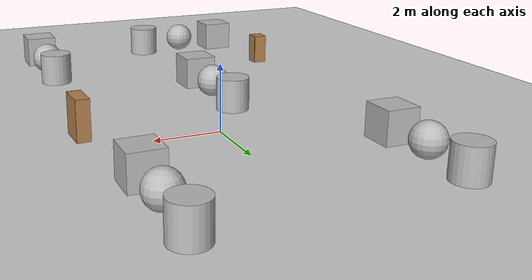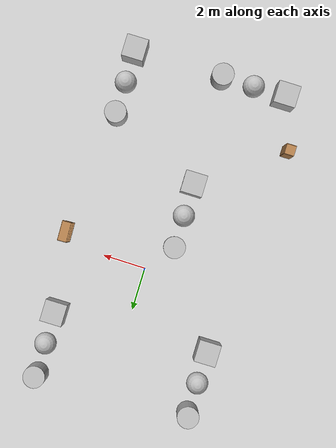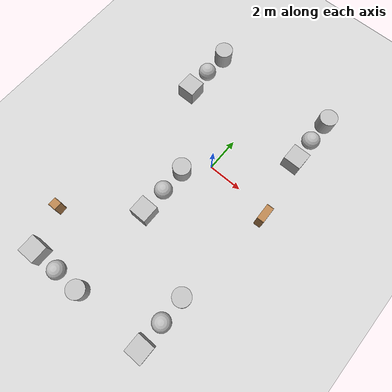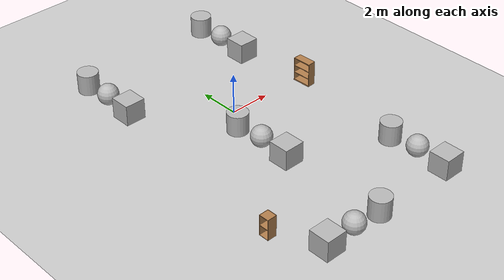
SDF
<sdf version="1.6">
 <world name="default">
  <light name="sun" type="directional">
   <pose>0 0 10 0 -0 0</pose>
   <diffuse>0.8 0.8 0.8 1</diffuse>
   <specular>0.1 0.1 0.1 1</specular>
   <attenuation>
    <range>1000</range>
    <constant>0.9</constant>
    <linear>0.01</linear>
    <quadratic>0.001</quadratic>
   </attenuation>
   <direction>-0.5 0.5 -1</direction>
  </light>
  <model name="ground_plane">
   <static>1</static>
   <link name="link">
    <collision name="collision">
     <geometry><plane><normal>0 0 1</normal><size>100 100</size></plane></geometry>
     <surface><friction><ode><mu>100</mu><mu2>50</mu2></ode></friction></surface>
    </collision>
    <visual name="visual">
     <cast_shadows>0</cast_shadows>
     <geometry><plane><normal>0 0 1</normal><size>100 100</size></plane></geometry>
     <material>
      <script><uri>file://media/materials/scripts/gazebo.material</uri><name>Gazebo/Grey</name></script>
     </material>
    </visual>
   </link>
  </model>
  <gravity>0 0 -9.8</gravity>
  <magnetic_field>6e-06 2.3e-05 -4.2e-05</magnetic_field>
  <atmosphere type="adiabatic"/>
  <physics name="default_physics" default="0" type="ode">
   <max_step_size>0.001</max_step_size>
   <real_time_factor>1</real_time_factor>
   <real_time_update_rate>1000</real_time_update_rate>
  </physics>
  <scene><ambient>0.4 0.4 0.4 1</ambient><background>0.7 0.7 0.7 1</background><shadows>1</shadows></scene>
  <spherical_coordinates>
   <surface_model>EARTH_WGS84</surface_model>
   <latitude_deg>0</latitude_deg>
   <longitude_deg>0</longitude_deg>
   <elevation>0</elevation>
   <heading_deg>0</heading_deg>
  </spherical_coordinates>
  <model name="textured_shapes">
   <pose>3.31091 -7.87686 0.682904 0 -0 0</pose>
   <link name="box">
    <pose>0 -1.5 0 0 -0 0</pose>
    <collision name="collision"><geometry><box><size>1 1 1</size></box></geometry></collision>
    <visual name="visual">
     <geometry><box><size>1 1 1</size></box></geometry>
     <material>
      <script>
       <uri>model://textured_shapes/materials/scripts</uri>
       <uri>model://textured_shapes/materials/textures</uri>
       <name>TexturedShape/Squares</name>
      </script>
     </material>
    </visual>
    <inertial>
     <inertia><ixx>1</ixx><ixy>0</ixy><ixz>0</ixz><iyy>1</iyy><iyz>0</iyz><izz>1</izz></inertia>
     <mass>1</mass>
    </inertial>
   </link>
   <link name="sphere">
    <collision name="collision"><geometry><sphere><radius>0.5</radius></sphere></geometry></collision>
    <visual name="visual">
     <geometry><sphere><radius>0.5</radius></sphere></geometry>
     <material>
      <script>
       <uri>model://textured_shapes/materials/scripts</uri>
       <uri>model://textured_shapes/materials/textures</uri>
       <name>TexturedShape/Squares</name>
      </script>
     </material>
    </visual>
    <inertial>
     <inertia><ixx>1</ixx><ixy>0</ixy><ixz>0</ixz><iyy>1</iyy><iyz>0</iyz><izz>1</izz></inertia>
     <mass>1</mass>
    </inertial>
   </link>
   <link name="cylinder">
    <pose>0 1.5 0 0 -0 0</pose>
    <collision name="collision">
     <geometry><cylinder><radius>0.5</radius><length>1</length></cylinder></geometry>
    </collision>
    <visual name="visual">
     <geometry><cylinder><radius>0.5</radius><length>1</length></cylinder></geometry>
     <material>
      <script>
       <uri>model://textured_shapes/materials/scripts</uri>
       <uri>model://textured_shapes/materials/textures</uri>
       <name>TexturedShape/Squares</name>
      </script>
     </material>
    </visual>
    <inertial>
     <inertia><ixx>1</ixx><ixy>0</ixy><ixz>0</ixz><iyy>1</iyy><iyz>0</iyz><izz>1</izz></inertia>
     <mass>1</mass>
    </inertial>
   </link>
  </model>
  <model name="textured_shapes_clone">
   <pose>-0.994482 -2.83427 0.682904 0 -0 0</pose>
   <link name="box">
    <pose>0 -1.5 0 0 -0 0</pose>
    <collision name="collision"><geometry><box><size>1 1 1</size></box></geometry></collision>
    <visual name="visual">
     <geometry><box><size>1 1 1</size></box></geometry>
     <material>
      <script>
       <uri>model://textured_shapes/materials/scripts</uri>
       <uri>model://textured_shapes/materials/textures</uri>
       <name>TexturedShape/Squares</name>
      </script>
     </material>
    </visual>
    <inertial>
     <inertia><ixx>1</ixx><ixy>0</ixy><ixz>0</ixz><iyy>1</iyy><iyz>0</iyz><izz>1</izz></inertia>
     <mass>1</mass>
    </inertial>
   </link>
   <link name="sphere">
    <collision name="collision"><geometry><sphere><radius>0.5</radius></sphere></geometry></collision>
    <visual name="visual">
     <geometry><sphere><radius>0.5</radius></sphere></geometry>
     <material>
      <script>
       <uri>model://textured_shapes/materials/scripts</uri>
       <uri>model://textured_shapes/materials/textures</uri>
       <name>TexturedShape/Squares</name>
      </script>
     </material>
    </visual>
    <inertial>
     <inertia><ixx>1</ixx><ixy>0</ixy><ixz>0</ixz><iyy>1</iyy><iyz>0</iyz><izz>1</izz></inertia>
     <mass>1</mass>
    </inertial>
   </link>
   <link name="cylinder">
    <pose>0 1.5 0 0 -0 0</pose>
    <collision name="collision">
     <geometry><cylinder><radius>0.5</radius><length>1</length></cylinder></geometry>
    </collision>
    <visual name="visual">
     <geometry><cylinder><radius>0.5</radius><length>1</length></cylinder></geometry>
     <material>
      <script>
       <uri>model://textured_shapes/materials/scripts</uri>
       <uri>model://textured_shapes/materials/textures</uri>
       <name>TexturedShape/Squares</name>
      </script>
     </material>
    </visual>
    <inertial>
     <inertia><ixx>1</ixx><ixy>0</ixy><ixz>0</ixz><iyy>1</iyy><iyz>0</iyz><izz>1</izz></inertia>
     <mass>1</mass>
    </inertial>
   </link>
  </model>
  <model name="textured_shapes_clone_0">
   <pose>3.32625 4.54214 0.682904 0 -0 0</pose>
   <link name="box">
    <pose>0 -1.5 0 0 -0 0</pose>
    <collision name="collision"><geometry><box><size>1 1 1</size></box></geometry></collision>
    <visual name="visual">
     <geometry><box><size>1 1 1</size></box></geometry>
     <material>
      <script>
       <uri>model://textured_shapes/materials/scripts</uri>
       <uri>model://textured_shapes/materials/textures</uri>
       <name>TexturedShape/Squares</name>
      </script>
     </material>
    </visual>
    <inertial>
     <inertia><ixx>1</ixx><ixy>0</ixy><ixz>0</ixz><iyy>1</iyy><iyz>0</iyz><izz>1</izz></inertia>
     <mass>1</mass>
    </inertial>
   </link>
   <link name="sphere">
    <collision name="collision"><geometry><sphere><radius>0.5</radius></sphere></geometry></collision>
    <visual name="visual">
     <geometry><sphere><radius>0.5</radius></sphere></geometry>
     <material>
      <script>
       <uri>model://textured_shapes/materials/scripts</uri>
       <uri>model://textured_shapes/materials/textures</uri>
       <name>TexturedShape/Squares</name>
      </script>
     </material>
    </visual>
    <inertial>
     <inertia><ixx>1</ixx><ixy>0</ixy><ixz>0</ixz><iyy>1</iyy><iyz>0</iyz><izz>1</izz></inertia>
     <mass>1</mass>
    </inertial>
   </link>
   <link name="cylinder">
    <pose>0 1.5 0 0 -0 0</pose>
    <collision name="collision">
     <geometry><cylinder><radius>0.5</radius><length>1</length></cylinder></geometry>
    </collision>
    <visual name="visual">
     <geometry><cylinder><radius>0.5</radius><length>1</length></cylinder></geometry>
     <material>
      <script>
       <uri>model://textured_shapes/materials/scripts</uri>
       <uri>model://textured_shapes/materials/textures</uri>
       <name>TexturedShape/Squares</name>
      </script>
     </material>
    </visual>
    <inertial>
     <inertia><ixx>1</ixx><ixy>0</ixy><ixz>0</ixz><iyy>1</iyy><iyz>0</iyz><izz>1</izz></inertia>
     <mass>1</mass>
    </inertial>
   </link>
  </model>
  <model name="textured_shapes_clone_1">
   <pose>-2.31122 -9.38407 0.682904 0 0 -1.5755</pose>
   <link name="box">
    <pose>0 -1.5 0 0 -0 0</pose>
    <collision name="collision"><geometry><box><size>1 1 1</size></box></geometry></collision>
    <visual name="visual">
     <geometry><box><size>1 1 1</size></box></geometry>
     <material>
      <script>
       <uri>model://textured_shapes/materials/scripts</uri>
       <uri>model://textured_shapes/materials/textures</uri>
       <name>TexturedShape/Squares</name>
      </script>
     </material>
    </visual>
    <inertial>
     <inertia><ixx>1</ixx><ixy>0</ixy><ixz>0</ixz><iyy>1</iyy><iyz>0</iyz><izz>1</izz></inertia>
     <mass>1</mass>
    </inertial>
   </link>
   <link name="sphere">
    <collision name="collision"><geometry><sphere><radius>0.5</radius></sphere></geometry></collision>
    <visual name="visual">
     <geometry><sphere><radius>0.5</radius></sphere></geometry>
     <material>
      <script>
       <uri>model://textured_shapes/materials/scripts</uri>
       <uri>model://textured_shapes/materials/textures</uri>
       <name>TexturedShape/Squares</name>
      </script>
     </material>
    </visual>
    <inertial>
     <inertia><ixx>1</ixx><ixy>0</ixy><ixz>0</ixz><iyy>1</iyy><iyz>0</iyz><izz>1</izz></inertia>
     <mass>1</mass>
    </inertial>
   </link>
   <link name="cylinder">
    <pose>0 1.5 0 0 -0 0</pose>
    <collision name="collision">
     <geometry><cylinder><radius>0.5</radius><length>1</length></cylinder></geometry>
    </collision>
    <visual name="visual">
     <geometry><cylinder><radius>0.5</radius><length>1</length></cylinder></geometry>
     <material>
      <script>
       <uri>model://textured_shapes/materials/scripts</uri>
       <uri>model://textured_shapes/materials/textures</uri>
       <name>TexturedShape/Squares</name>
      </script>
     </material>
    </visual>
    <inertial>
     <inertia><ixx>1</ixx><ixy>0</ixy><ixz>0</ixz><iyy>1</iyy><iyz>0</iyz><izz>1</izz></inertia>
     <mass>1</mass>
    </inertial>
   </link>
  </model>
  <model name="textured_shapes_clone_2">
   <pose>-3.79736 4.25921 0.682904 0 -0 0</pose>
   <link name="box">
    <pose>0 -1.5 0 0 -0 0</pose>
    <collision name="collision"><geometry><box><size>1 1 1</size></box></geometry></collision>
    <visual name="visual">
     <geometry><box><size>1 1 1</size></box></geometry>
     <material>
      <script>
       <uri>model://textured_shapes/materials/scripts</uri>
       <uri>model://textured_shapes/materials/textures</uri>
       <name>TexturedShape/Squares</name>
      </script>
     </material>
    </visual>
    <inertial>
     <inertia><ixx>1</ixx><ixy>0</ixy><ixz>0</ixz><iyy>1</iyy><iyz>0</iyz><izz>1</izz></inertia>
     <mass>1</mass>
    </inertial>
   </link>
   <link name="sphere">
    <collision name="collision"><geometry><sphere><radius>0.5</radius></sphere></geometry></collision>
    <visual name="visual">
     <geometry><sphere><radius>0.5</radius></sphere></geometry>
     <material>
      <script>
       <uri>model://textured_shapes/materials/scripts</uri>
       <uri>model://textured_shapes/materials/textures</uri>
       <name>TexturedShape/Squares</name>
      </script>
     </material>
    </visual>
    <inertial>
     <inertia><ixx>1</ixx><ixy>0</ixy><ixz>0</ixz><iyy>1</iyy><iyz>0</iyz><izz>1</izz></inertia>
     <mass>1</mass>
    </inertial>
   </link>
   <link name="cylinder">
    <pose>0 1.5 0 0 -0 0</pose>
    <collision name="collision">
     <geometry><cylinder><radius>0.5</radius><length>1</length></cylinder></geometry>
    </collision>
    <visual name="visual">
     <geometry><cylinder><radius>0.5</radius><length>1</length></cylinder></geometry>
     <material>
      <script>
       <uri>model://textured_shapes/materials/scripts</uri>
       <uri>model://textured_shapes/materials/textures</uri>
       <name>TexturedShape/Squares</name>
      </script>
     </material>
    </visual>
    <inertial>
     <inertia><ixx>1</ixx><ixy>0</ixy><ixz>0</ixz><iyy>1</iyy><iyz>0</iyz><izz>1</izz></inertia>
     <mass>1</mass>
    </inertial>
   </link>
  </model>
  <model name="cabinet">
   <static>1</static>
   <link name="cabinet_bottom_plate">
    <inertial>
     <pose>0 0 -1 0 -0 0</pose>
     <inertia><ixx>2.05</ixx><ixy>0</ixy><ixz>0</ixz><iyy>2.05</iyy><iyz>0</iyz><izz>2.05</izz></inertia>
     <mass>25</mass>
    </inertial>
    <collision name="cabinet_bottom_plate_geom">
     <pose>0 0 0.01 0 -0 0</pose>
     <geometry><box><size>0.45 0.45 0.02</size></box></geometry>
    </collision>
    <visual name="cabinet_bottom_plate_geom_visual">
     <pose>0 0 0.01 0 -0 0</pose>
     <geometry><box><size>0.45 0.45 0.02</size></box></geometry>
     <material>
      <script><uri>file://media/materials/scripts/gazebo.material</uri><name>Gazebo/Wood</name></script>
     </material>
    </visual>
    <collision name="cabinet_bottom_plate_geom_cabinet_back_plate">
     <pose>0.235 0 0.51 0 -0 0</pose>
     <geometry><box><size>0.02 0.45 1.02</size></box></geometry>
    </collision>
    <visual name="cabinet_bottom_plate_geom_cabinet_back_plate_visual">
     <pose>0.235 0 0.51 0 -0 0</pose>
     <geometry><box><size>0.02 0.45 1.02</size></box></geometry>
     <material>
      <script><uri>file://media/materials/scripts/gazebo.material</uri><name>Gazebo/Wood</name></script>
     </material>
    </visual>
    <collision name="cabinet_bottom_plate_geom_cabinet_left_plate">
     <pose>0 0.235 0.51 0 -0 0</pose>
     <geometry><box><size>0.45 0.02 1.02</size></box></geometry>
    </collision>
    <visual name="cabinet_bottom_plate_geom_cabinet_left_plate_visual">
     <pose>0 0.235 0.51 0 -0 0</pose>
     <geometry><box><size>0.45 0.02 1.02</size></box></geometry>
     <material>
      <script><uri>file://media/materials/scripts/gazebo.material</uri><name>Gazebo/Wood</name></script>
     </material>
    </visual>
    <collision name="cabinet_bottom_plate_geom_cabinet_middle_plate">
     <pose>0 0 0.51 0 -0 0</pose>
     <geometry><box><size>0.45 0.45 0.02</size></box></geometry>
    </collision>
    <visual name="cabinet_bottom_plate_geom_cabinet_middle_plate_visual">
     <pose>0 0 0.51 0 -0 0</pose>
     <geometry><box><size>0.45 0.45 0.02</size></box></geometry>
     <material>
      <script><uri>file://media/materials/scripts/gazebo.material</uri><name>Gazebo/Wood</name></script>
     </material>
    </visual>
    <collision name="cabinet_bottom_plate_geom_cabinet_right_plate">
     <pose>0 -0.235 0.51 0 -0 0</pose>
     <geometry><box><size>0.45 0.02 1.02</size></box></geometry>
    </collision>
    <visual name="cabinet_bottom_plate_geom_cabinet_right_plate_visual">
     <pose>0 -0.235 0.51 0 -0 0</pose>
     <geometry><box><size>0.45 0.02 1.02</size></box></geometry>
     <material>
      <script><uri>file://media/materials/scripts/gazebo.material</uri><name>Gazebo/Wood</name></script>
     </material>
    </visual>
    <collision name="cabinet_bottom_plate_geom_cabinet_top_plate">
     <pose>0 0 1.01 0 -0 0</pose>
     <geometry><box><size>0.45 0.45 0.02</size></box></geometry>
    </collision>
    <visual name="cabinet_bottom_plate_geom_cabinet_top_plate_visual">
     <pose>0 0 1.01 0 -0 0</pose>
     <geometry><box><size>0.45 0.45 0.02</size></box></geometry>
     <material>
      <script><uri>file://media/materials/scripts/gazebo.material</uri><name>Gazebo/Wood</name></script>
     </material>
    </visual>
   </link>
   <pose>-4.70368 -7.05945 0 0 -0 0</pose>
  </model>
  <model name="bookshelf">
   <static>1</static>
   <link name="link">
    <inertial><mass>1</mass></inertial>
    <collision name="back">
     <pose>0 0.005 0.6 0 -0 0</pose>
     <geometry><box><size>0.9 0.01 1.2</size></box></geometry>
    </collision>
    <visual name="visual1">
     <pose>0 0.005 0.6 0 -0 0</pose>
     <geometry><box><size>0.9 0.01 1.2</size></box></geometry>
     <material>
      <script><uri>file://media/materials/scripts/gazebo.material</uri><name>Gazebo/Wood</name></script>
     </material>
    </visual>
    <collision name="left_side">
     <pose>0.45 -0.195 0.6 0 -0 0</pose>
     <geometry><box><size>0.02 0.4 1.2</size></box></geometry>
    </collision>
    <visual name="visual2">
     <pose>0.45 -0.195 0.6 0 -0 0</pose>
     <geometry><box><size>0.02 0.4 1.2</size></box></geometry>
     <material>
      <script><uri>file://media/materials/scripts/gazebo.material</uri><name>Gazebo/Wood</name></script>
     </material>
    </visual>
    <collision name="right_side">
     <pose>-0.45 -0.195 0.6 0 -0 0</pose>
     <geometry><box><size>0.02 0.4 1.2</size></box></geometry>
    </collision>
    <visual name="visual3">
     <pose>-0.45 -0.195 0.6 0 -0 0</pose>
     <geometry><box><size>0.02 0.4 1.2</size></box></geometry>
     <material>
      <script><uri>file://media/materials/scripts/gazebo.material</uri><name>Gazebo/Wood</name></script>
     </material>
    </visual>
    <collision name="bottom">
     <pose>0 -0.195 0.03 0 -0 0</pose>
     <geometry><box><size>0.88 0.4 0.06</size></box></geometry>
    </collision>
    <visual name="visual4">
     <pose>0 -0.195 0.03 0 -0 0</pose>
     <geometry><box><size>0.88 0.4 0.06</size></box></geometry>
     <material>
      <script><uri>file://media/materials/scripts/gazebo.material</uri><name>Gazebo/Wood</name></script>
     </material>
    </visual>
    <collision name="top">
     <pose>0 -0.195 1.19 0 -0 0</pose>
     <geometry><box><size>0.88 0.4 0.02</size></box></geometry>
    </collision>
    <visual name="visual5">
     <pose>0 -0.195 1.19 0 -0 0</pose>
     <geometry><box><size>0.88 0.4 0.02</size></box></geometry>
     <material>
      <script><uri>file://media/materials/scripts/gazebo.material</uri><name>Gazebo/Wood</name></script>
     </material>
    </visual>
    <collision name="low_shelf">
     <pose>0 -0.195 0.43 0 -0 0</pose>
     <geometry><box><size>0.88 0.4 0.02</size></box></geometry>
    </collision>
    <visual name="visual6">
     <pose>0 -0.195 0.43 0 -0 0</pose>
     <geometry><box><size>0.88 0.4 0.02</size></box></geometry>
     <material>
      <script><uri>file://media/materials/scripts/gazebo.material</uri><name>Gazebo/Wood</name></script>
     </material>
    </visual>
    <collision name="high_shelf">
     <pose>0 -0.195 0.8 0 -0 0</pose>
     <geometry><box><size>0.88 0.4 0.02</size></box></geometry>
    </collision>
    <visual name="visual7">
     <pose>0 -0.195 0.8 0 -0 0</pose>
     <geometry><box><size>0.88 0.4 0.02</size></box></geometry>
     <material>
      <script><uri>file://media/materials/scripts/gazebo.material</uri><name>Gazebo/Wood</name></script>
     </material>
    </visual>
   </link>
   <pose>4.09315 -0.590713 0.181063 0 0 -1.5398</pose>
  </model>
 </world>
</sdf>
